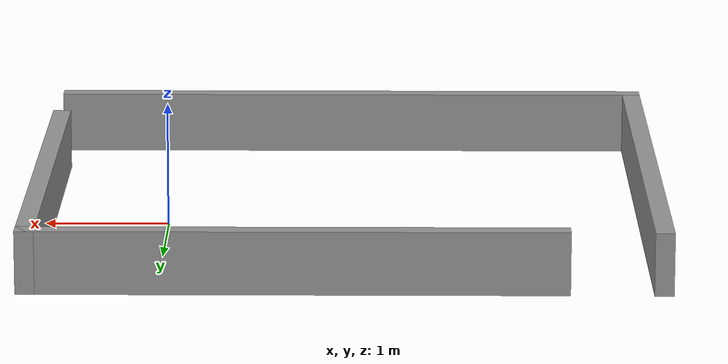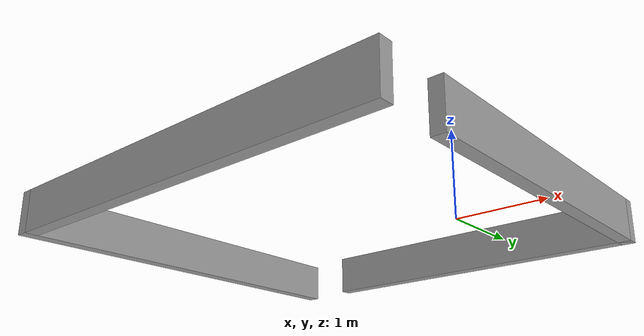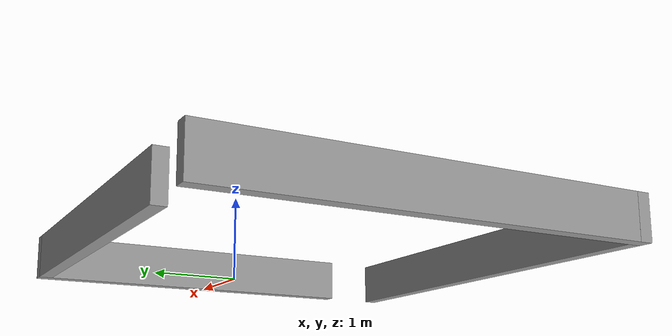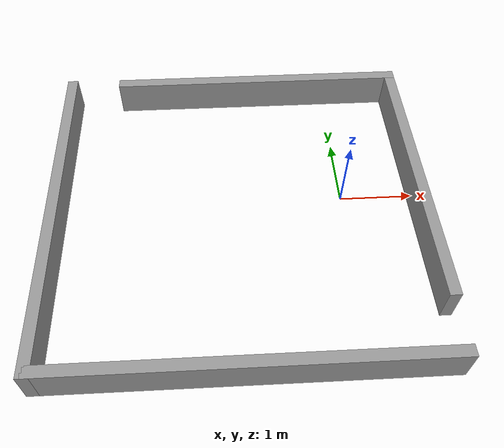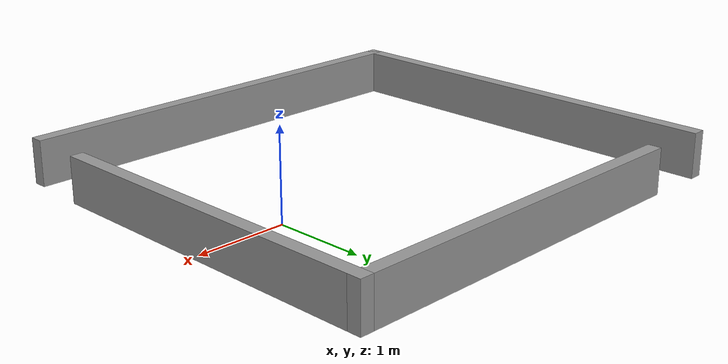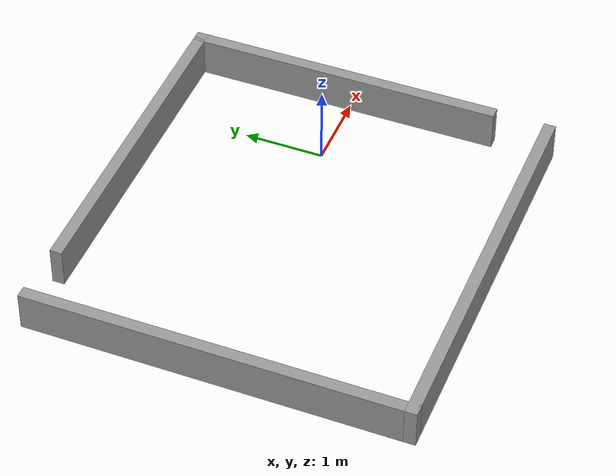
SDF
<?xml version='1.0'?>
<sdf version='1.6'>
  <model name='tunnel_wall3'>
    <pose frame=''>-1.443 -0.2615 0 0 -0 0</pose>
    <link name='Wall_31'>
      <collision name='Wall_31_Collision'>
        <geometry>
          <box>
            <size>5 0.15 0.5</size>
          </box>
        </geometry>
        <pose frame=''>0 0 0.25 0 -0 0</pose>
      </collision>
      <visual name='Wall_31_Visual'>
        <pose frame=''>0 0 0.25 0 -0 0</pose>
        <geometry>
          <box>
            <size>5 0.15 0.5</size>
          </box>
        </geometry>
        <material>
          <script>
            <uri>file://media/materials/scripts/gazebo.material</uri>
            <name>Gazebo/Grey</name>
          </script>
          <ambient>1 1 1 1</ambient>
        </material>
      </visual>
      <pose frame=''>-0.02 -2.3145 0 0 -0 3.14159</pose>
    </link>
    <link name='Wall_32'>
      <collision name='Wall_32_Collision'>
        <geometry>
          <box>
            <size>4.779 0.15 0.5</size>
          </box>
        </geometry>
        <pose frame=''>0 0 0.25 0 -0 0</pose>
      </collision>
      <visual name='Wall_32_Visual'>
        <pose frame=''>0 0 0.25 0 -0 0</pose>
        <geometry>
          <box>
            <size>4.779 0.15 0.5</size>
          </box>
        </geometry>
        <material>
          <script>
            <uri>file://media/materials/scripts/gazebo.material</uri>
            <name>Gazebo/Grey</name>
          </script>
          <ambient>1 1 1 1</ambient>
        </material>
      </visual>
      <pose frame=''>-2.445 0 0 0 -0 1.5708</pose>
    </link>
    <link name='Wall_34'>
      <collision name='Wall_34_Collision'>
        <geometry>
          <box>
            <size>4 0.15 0.5</size>
          </box>
        </geometry>
        <pose frame=''>0 0 0.25 0 -0 0</pose>
      </collision>
      <visual name='Wall_34_Visual'>
        <pose frame=''>0 0 0.25 0 -0 0</pose>
        <geometry>
          <box>
            <size>4 0.15 0.5</size>
          </box>
        </geometry>
        <material>
          <script>
            <uri>file://media/materials/scripts/gazebo.material</uri>
            <name>Gazebo/Grey</name>
          </script>
          <ambient>1 1 1 1</ambient>
        </material>
      </visual>
      <pose frame=''>2.445 0.3755 0 0 -0 1.5708</pose>
    </link>
    <link name='Wall_35'>
      <collision name='Wall_35_Collision'>
        <geometry>
          <box>
            <size>4.25 0.15 0.5</size>
          </box>
        </geometry>
        <pose frame=''>0 0 0.25 0 -0 0</pose>
      </collision>
      <visual name='Wall_35_Visual'>
        <pose frame=''>0 0 0.25 0 -0 0</pose>
        <geometry>
          <box>
            <size>4.25 0.15 0.5</size>
          </box>
        </geometry>
        <material>
          <script>
            <uri>file://media/materials/scripts/gazebo.material</uri>
            <name>Gazebo/Grey</name>
          </script>
          <ambient>1 1 1 1</ambient>
        </material>
      </visual>
      <pose frame=''>0.395 2.3005 0 0 -0 3.14159</pose>
    </link>
    <static>1</static>
  </model>
</sdf>
